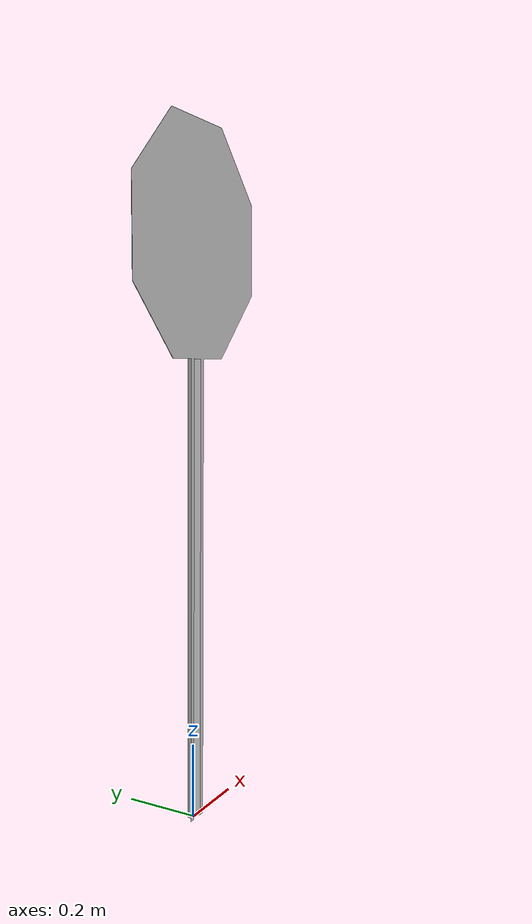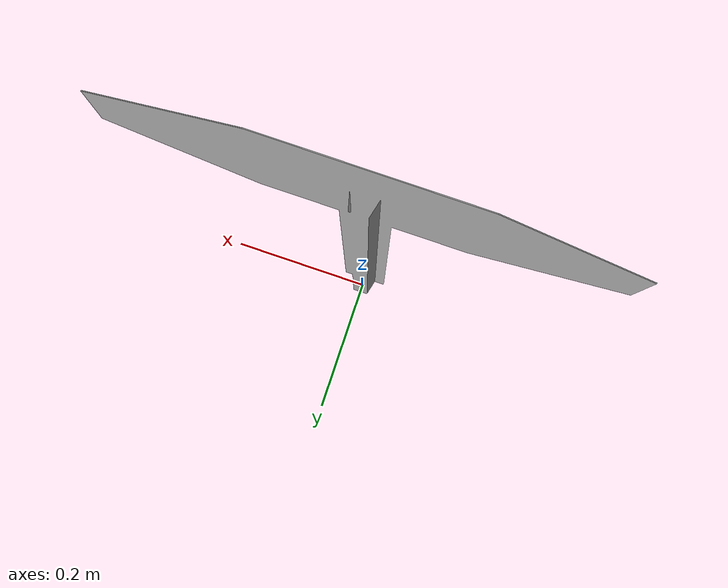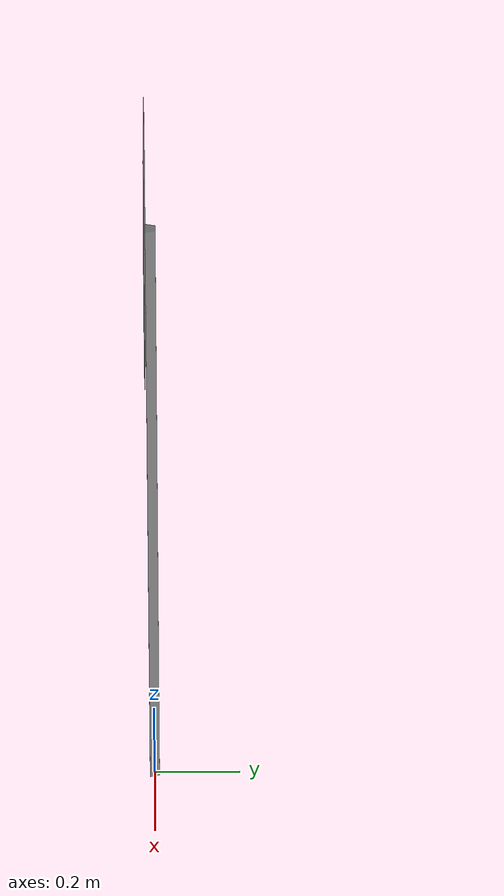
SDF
<?xml version="1.0" ?>
<sdf version="1.5">
  <model name="Stop Sign">
    <static>true</static>
    <link name="link">
      <collision name="collision">
        <geometry>
          <mesh>
            <uri>model://stop_sign_remodeled/meshes/stop_sign_remodeled.dae</uri>
          </mesh>
        </geometry>
      </collision>
      <visual name="visual">
        <geometry>
          <mesh>
            <uri>model://stop_sign_remodeled/meshes/stop_sign_remodeled.dae</uri>
          </mesh>
        </geometry>
        <material>
          <script>
            <uri>model://stop_sign_remodeled/materials/scripts</uri>
            <uri>model://stop_sign_remodeled/materials/textures</uri>
            <name>StopSignRemodeled/Diffuse</name>
          </script>
        </material>
      </visual>
    </link>
  </model>
</sdf>
